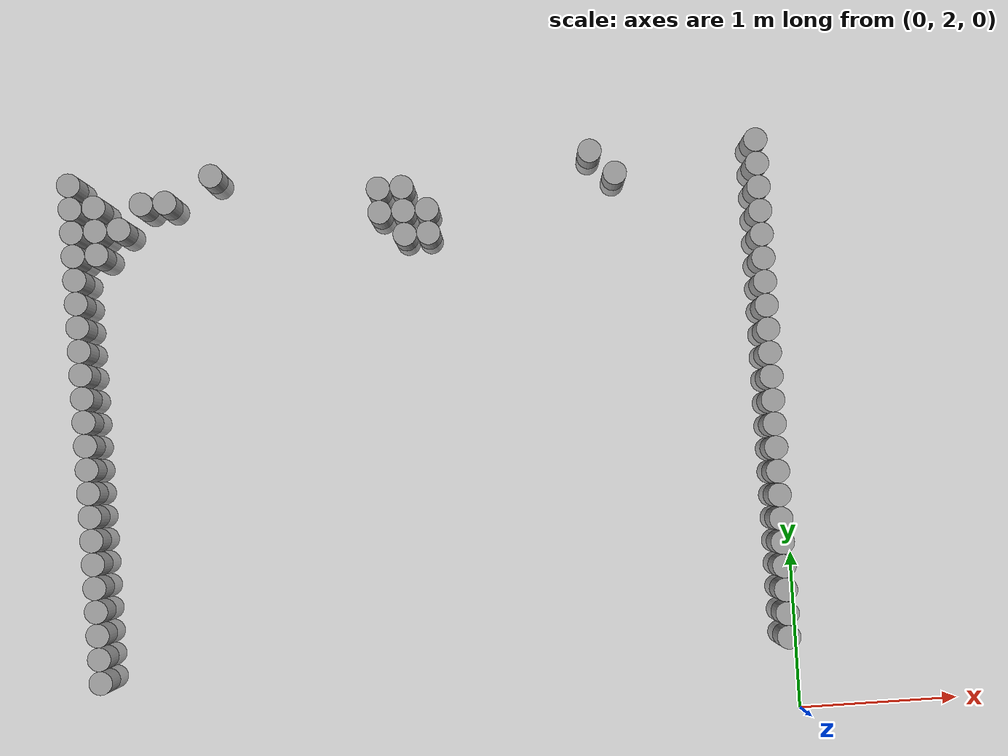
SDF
<sdf version="1.6">
 <world name="default">
  <model name="ground_plane">
   <static>1</static>
   <static>1</static>
   <link name="link">
    <collision name="collision">
     <geometry><plane><normal>0 0 1</normal><size>100 100</size></plane></geometry>
     <surface><friction><ode><mu>100</mu><mu2>50</mu2></ode></friction></surface>
    </collision>
    <visual name="visual">
     <cast_shadows>0</cast_shadows>
     <geometry><plane><normal>0 0 1</normal><size>100 100</size></plane></geometry>
     <material>
      <script><uri>file://media/materials/scripts/gazebo.material</uri><name>Gazebo/Grey</name></script>
     </material>
    </visual>
   </link>
  </model>
  <model name="unit_cylinder_60">
   <static>1</static>
   <pose>-0.075000 2.475000 0.000000 0.000000 0.000000 0.000000</pose>
   <link name="link">
    <inertial>
     <mass>1</mass>
     <inertia><ixx>0.145833</ixx><ixy>0</ixy><ixz>0</ixz><iyy>0.145833</iyy><iyz>0</iyz><izz>0.125</izz></inertia>
    </inertial>
    <collision name="collision">
     <geometry><cylinder><radius>0.075000</radius><length>1</length></cylinder></geometry>
    </collision>
    <visual name="visual">
     <geometry><cylinder><radius>0.075000</radius><length>1</length></cylinder></geometry>
     <material>
      <script><name>Gazebo/Grey</name><uri>file://media/materials/scripts/gazebo.material</uri></script>
     </material>
    </visual>
   </link>
  </model>
  <model name="unit_cylinder_61">
   <static>1</static>
   <pose>-4.425000 2.475000 0.000000 0.000000 0.000000 0.000000</pose>
   <link name="link">
    <inertial>
     <mass>1</mass>
     <inertia><ixx>0.145833</ixx><ixy>0</ixy><ixz>0</ixz><iyy>0.145833</iyy><iyz>0</iyz><izz>0.125</izz></inertia>
    </inertial>
    <collision name="collision">
     <geometry><cylinder><radius>0.075000</radius><length>1</length></cylinder></geometry>
    </collision>
    <visual name="visual">
     <geometry><cylinder><radius>0.075000</radius><length>1</length></cylinder></geometry>
     <material>
      <script><name>Gazebo/Grey</name><uri>file://media/materials/scripts/gazebo.material</uri></script>
     </material>
    </visual>
   </link>
  </model>
  <model name="unit_cylinder_62">
   <static>1</static>
   <pose>-0.075000 2.625000 0.000000 0.000000 0.000000 0.000000</pose>
   <link name="link">
    <inertial>
     <mass>1</mass>
     <inertia><ixx>0.145833</ixx><ixy>0</ixy><ixz>0</ixz><iyy>0.145833</iyy><iyz>0</iyz><izz>0.125</izz></inertia>
    </inertial>
    <collision name="collision">
     <geometry><cylinder><radius>0.075000</radius><length>1</length></cylinder></geometry>
    </collision>
    <visual name="visual">
     <geometry><cylinder><radius>0.075000</radius><length>1</length></cylinder></geometry>
     <material>
      <script><name>Gazebo/Grey</name><uri>file://media/materials/scripts/gazebo.material</uri></script>
     </material>
    </visual>
   </link>
  </model>
  <model name="unit_cylinder_63">
   <static>1</static>
   <pose>-4.425000 2.625000 0.000000 0.000000 0.000000 0.000000</pose>
   <link name="link">
    <inertial>
     <mass>1</mass>
     <inertia><ixx>0.145833</ixx><ixy>0</ixy><ixz>0</ixz><iyy>0.145833</iyy><iyz>0</iyz><izz>0.125</izz></inertia>
    </inertial>
    <collision name="collision">
     <geometry><cylinder><radius>0.075000</radius><length>1</length></cylinder></geometry>
    </collision>
    <visual name="visual">
     <geometry><cylinder><radius>0.075000</radius><length>1</length></cylinder></geometry>
     <material>
      <script><name>Gazebo/Grey</name><uri>file://media/materials/scripts/gazebo.material</uri></script>
     </material>
    </visual>
   </link>
  </model>
  <model name="unit_cylinder_64">
   <static>1</static>
   <pose>-0.075000 2.775000 0.000000 0.000000 0.000000 0.000000</pose>
   <link name="link">
    <inertial>
     <mass>1</mass>
     <inertia><ixx>0.145833</ixx><ixy>0</ixy><ixz>0</ixz><iyy>0.145833</iyy><iyz>0</iyz><izz>0.125</izz></inertia>
    </inertial>
    <collision name="collision">
     <geometry><cylinder><radius>0.075000</radius><length>1</length></cylinder></geometry>
    </collision>
    <visual name="visual">
     <geometry><cylinder><radius>0.075000</radius><length>1</length></cylinder></geometry>
     <material>
      <script><name>Gazebo/Grey</name><uri>file://media/materials/scripts/gazebo.material</uri></script>
     </material>
    </visual>
   </link>
  </model>
  <model name="unit_cylinder_65">
   <static>1</static>
   <pose>-4.425000 2.775000 0.000000 0.000000 0.000000 0.000000</pose>
   <link name="link">
    <inertial>
     <mass>1</mass>
     <inertia><ixx>0.145833</ixx><ixy>0</ixy><ixz>0</ixz><iyy>0.145833</iyy><iyz>0</iyz><izz>0.125</izz></inertia>
    </inertial>
    <collision name="collision">
     <geometry><cylinder><radius>0.075000</radius><length>1</length></cylinder></geometry>
    </collision>
    <visual name="visual">
     <geometry><cylinder><radius>0.075000</radius><length>1</length></cylinder></geometry>
     <material>
      <script><name>Gazebo/Grey</name><uri>file://media/materials/scripts/gazebo.material</uri></script>
     </material>
    </visual>
   </link>
  </model>
  <model name="unit_cylinder_66">
   <static>1</static>
   <pose>-0.075000 2.925000 0.000000 0.000000 0.000000 0.000000</pose>
   <link name="link">
    <inertial>
     <mass>1</mass>
     <inertia><ixx>0.145833</ixx><ixy>0</ixy><ixz>0</ixz><iyy>0.145833</iyy><iyz>0</iyz><izz>0.125</izz></inertia>
    </inertial>
    <collision name="collision">
     <geometry><cylinder><radius>0.075000</radius><length>1</length></cylinder></geometry>
    </collision>
    <visual name="visual">
     <geometry><cylinder><radius>0.075000</radius><length>1</length></cylinder></geometry>
     <material>
      <script><name>Gazebo/Grey</name><uri>file://media/materials/scripts/gazebo.material</uri></script>
     </material>
    </visual>
   </link>
  </model>
  <model name="unit_cylinder_67">
   <static>1</static>
   <pose>-4.425000 2.925000 0.000000 0.000000 0.000000 0.000000</pose>
   <link name="link">
    <inertial>
     <mass>1</mass>
     <inertia><ixx>0.145833</ixx><ixy>0</ixy><ixz>0</ixz><iyy>0.145833</iyy><iyz>0</iyz><izz>0.125</izz></inertia>
    </inertial>
    <collision name="collision">
     <geometry><cylinder><radius>0.075000</radius><length>1</length></cylinder></geometry>
    </collision>
    <visual name="visual">
     <geometry><cylinder><radius>0.075000</radius><length>1</length></cylinder></geometry>
     <material>
      <script><name>Gazebo/Grey</name><uri>file://media/materials/scripts/gazebo.material</uri></script>
     </material>
    </visual>
   </link>
  </model>
  <model name="unit_cylinder_68">
   <static>1</static>
   <pose>-0.075000 3.075000 0.000000 0.000000 0.000000 0.000000</pose>
   <link name="link">
    <inertial>
     <mass>1</mass>
     <inertia><ixx>0.145833</ixx><ixy>0</ixy><ixz>0</ixz><iyy>0.145833</iyy><iyz>0</iyz><izz>0.125</izz></inertia>
    </inertial>
    <collision name="collision">
     <geometry><cylinder><radius>0.075000</radius><length>1</length></cylinder></geometry>
    </collision>
    <visual name="visual">
     <geometry><cylinder><radius>0.075000</radius><length>1</length></cylinder></geometry>
     <material>
      <script><name>Gazebo/Grey</name><uri>file://media/materials/scripts/gazebo.material</uri></script>
     </material>
    </visual>
   </link>
  </model>
  <model name="unit_cylinder_69">
   <static>1</static>
   <pose>-4.425000 3.075000 0.000000 0.000000 0.000000 0.000000</pose>
   <link name="link">
    <inertial>
     <mass>1</mass>
     <inertia><ixx>0.145833</ixx><ixy>0</ixy><ixz>0</ixz><iyy>0.145833</iyy><iyz>0</iyz><izz>0.125</izz></inertia>
    </inertial>
    <collision name="collision">
     <geometry><cylinder><radius>0.075000</radius><length>1</length></cylinder></geometry>
    </collision>
    <visual name="visual">
     <geometry><cylinder><radius>0.075000</radius><length>1</length></cylinder></geometry>
     <material>
      <script><name>Gazebo/Grey</name><uri>file://media/materials/scripts/gazebo.material</uri></script>
     </material>
    </visual>
   </link>
  </model>
  <model name="unit_cylinder_70">
   <static>1</static>
   <pose>-0.075000 3.225000 0.000000 0.000000 0.000000 0.000000</pose>
   <link name="link">
    <inertial>
     <mass>1</mass>
     <inertia><ixx>0.145833</ixx><ixy>0</ixy><ixz>0</ixz><iyy>0.145833</iyy><iyz>0</iyz><izz>0.125</izz></inertia>
    </inertial>
    <collision name="collision">
     <geometry><cylinder><radius>0.075000</radius><length>1</length></cylinder></geometry>
    </collision>
    <visual name="visual">
     <geometry><cylinder><radius>0.075000</radius><length>1</length></cylinder></geometry>
     <material>
      <script><name>Gazebo/Grey</name><uri>file://media/materials/scripts/gazebo.material</uri></script>
     </material>
    </visual>
   </link>
  </model>
  <model name="unit_cylinder_71">
   <static>1</static>
   <pose>-4.425000 3.225000 0.000000 0.000000 0.000000 0.000000</pose>
   <link name="link">
    <inertial>
     <mass>1</mass>
     <inertia><ixx>0.145833</ixx><ixy>0</ixy><ixz>0</ixz><iyy>0.145833</iyy><iyz>0</iyz><izz>0.125</izz></inertia>
    </inertial>
    <collision name="collision">
     <geometry><cylinder><radius>0.075000</radius><length>1</length></cylinder></geometry>
    </collision>
    <visual name="visual">
     <geometry><cylinder><radius>0.075000</radius><length>1</length></cylinder></geometry>
     <material>
      <script><name>Gazebo/Grey</name><uri>file://media/materials/scripts/gazebo.material</uri></script>
     </material>
    </visual>
   </link>
  </model>
  <model name="unit_cylinder_72">
   <static>1</static>
   <pose>-0.075000 3.375000 0.000000 0.000000 0.000000 0.000000</pose>
   <link name="link">
    <inertial>
     <mass>1</mass>
     <inertia><ixx>0.145833</ixx><ixy>0</ixy><ixz>0</ixz><iyy>0.145833</iyy><iyz>0</iyz><izz>0.125</izz></inertia>
    </inertial>
    <collision name="collision">
     <geometry><cylinder><radius>0.075000</radius><length>1</length></cylinder></geometry>
    </collision>
    <visual name="visual">
     <geometry><cylinder><radius>0.075000</radius><length>1</length></cylinder></geometry>
     <material>
      <script><name>Gazebo/Grey</name><uri>file://media/materials/scripts/gazebo.material</uri></script>
     </material>
    </visual>
   </link>
  </model>
  <model name="unit_cylinder_73">
   <static>1</static>
   <pose>-4.425000 3.375000 0.000000 0.000000 0.000000 0.000000</pose>
   <link name="link">
    <inertial>
     <mass>1</mass>
     <inertia><ixx>0.145833</ixx><ixy>0</ixy><ixz>0</ixz><iyy>0.145833</iyy><iyz>0</iyz><izz>0.125</izz></inertia>
    </inertial>
    <collision name="collision">
     <geometry><cylinder><radius>0.075000</radius><length>1</length></cylinder></geometry>
    </collision>
    <visual name="visual">
     <geometry><cylinder><radius>0.075000</radius><length>1</length></cylinder></geometry>
     <material>
      <script><name>Gazebo/Grey</name><uri>file://media/materials/scripts/gazebo.material</uri></script>
     </material>
    </visual>
   </link>
  </model>
  <model name="unit_cylinder_74">
   <static>1</static>
   <pose>-0.075000 3.525000 0.000000 0.000000 0.000000 0.000000</pose>
   <link name="link">
    <inertial>
     <mass>1</mass>
     <inertia><ixx>0.145833</ixx><ixy>0</ixy><ixz>0</ixz><iyy>0.145833</iyy><iyz>0</iyz><izz>0.125</izz></inertia>
    </inertial>
    <collision name="collision">
     <geometry><cylinder><radius>0.075000</radius><length>1</length></cylinder></geometry>
    </collision>
    <visual name="visual">
     <geometry><cylinder><radius>0.075000</radius><length>1</length></cylinder></geometry>
     <material>
      <script><name>Gazebo/Grey</name><uri>file://media/materials/scripts/gazebo.material</uri></script>
     </material>
    </visual>
   </link>
  </model>
  <model name="unit_cylinder_75">
   <static>1</static>
   <pose>-4.425000 3.525000 0.000000 0.000000 0.000000 0.000000</pose>
   <link name="link">
    <inertial>
     <mass>1</mass>
     <inertia><ixx>0.145833</ixx><ixy>0</ixy><ixz>0</ixz><iyy>0.145833</iyy><iyz>0</iyz><izz>0.125</izz></inertia>
    </inertial>
    <collision name="collision">
     <geometry><cylinder><radius>0.075000</radius><length>1</length></cylinder></geometry>
    </collision>
    <visual name="visual">
     <geometry><cylinder><radius>0.075000</radius><length>1</length></cylinder></geometry>
     <material>
      <script><name>Gazebo/Grey</name><uri>file://media/materials/scripts/gazebo.material</uri></script>
     </material>
    </visual>
   </link>
  </model>
  <model name="unit_cylinder_76">
   <static>1</static>
   <pose>-0.075000 3.675000 0.000000 0.000000 0.000000 0.000000</pose>
   <link name="link">
    <inertial>
     <mass>1</mass>
     <inertia><ixx>0.145833</ixx><ixy>0</ixy><ixz>0</ixz><iyy>0.145833</iyy><iyz>0</iyz><izz>0.125</izz></inertia>
    </inertial>
    <collision name="collision">
     <geometry><cylinder><radius>0.075000</radius><length>1</length></cylinder></geometry>
    </collision>
    <visual name="visual">
     <geometry><cylinder><radius>0.075000</radius><length>1</length></cylinder></geometry>
     <material>
      <script><name>Gazebo/Grey</name><uri>file://media/materials/scripts/gazebo.material</uri></script>
     </material>
    </visual>
   </link>
  </model>
  <model name="unit_cylinder_77">
   <static>1</static>
   <pose>-4.425000 3.675000 0.000000 0.000000 0.000000 0.000000</pose>
   <link name="link">
    <inertial>
     <mass>1</mass>
     <inertia><ixx>0.145833</ixx><ixy>0</ixy><ixz>0</ixz><iyy>0.145833</iyy><iyz>0</iyz><izz>0.125</izz></inertia>
    </inertial>
    <collision name="collision">
     <geometry><cylinder><radius>0.075000</radius><length>1</length></cylinder></geometry>
    </collision>
    <visual name="visual">
     <geometry><cylinder><radius>0.075000</radius><length>1</length></cylinder></geometry>
     <material>
      <script><name>Gazebo/Grey</name><uri>file://media/materials/scripts/gazebo.material</uri></script>
     </material>
    </visual>
   </link>
  </model>
  <model name="unit_cylinder_78">
   <static>1</static>
   <pose>-0.075000 3.825000 0.000000 0.000000 0.000000 0.000000</pose>
   <link name="link">
    <inertial>
     <mass>1</mass>
     <inertia><ixx>0.145833</ixx><ixy>0</ixy><ixz>0</ixz><iyy>0.145833</iyy><iyz>0</iyz><izz>0.125</izz></inertia>
    </inertial>
    <collision name="collision">
     <geometry><cylinder><radius>0.075000</radius><length>1</length></cylinder></geometry>
    </collision>
    <visual name="visual">
     <geometry><cylinder><radius>0.075000</radius><length>1</length></cylinder></geometry>
     <material>
      <script><name>Gazebo/Grey</name><uri>file://media/materials/scripts/gazebo.material</uri></script>
     </material>
    </visual>
   </link>
  </model>
  <model name="unit_cylinder_79">
   <static>1</static>
   <pose>-4.425000 3.825000 0.000000 0.000000 0.000000 0.000000</pose>
   <link name="link">
    <inertial>
     <mass>1</mass>
     <inertia><ixx>0.145833</ixx><ixy>0</ixy><ixz>0</ixz><iyy>0.145833</iyy><iyz>0</iyz><izz>0.125</izz></inertia>
    </inertial>
    <collision name="collision">
     <geometry><cylinder><radius>0.075000</radius><length>1</length></cylinder></geometry>
    </collision>
    <visual name="visual">
     <geometry><cylinder><radius>0.075000</radius><length>1</length></cylinder></geometry>
     <material>
      <script><name>Gazebo/Grey</name><uri>file://media/materials/scripts/gazebo.material</uri></script>
     </material>
    </visual>
   </link>
  </model>
  <model name="unit_cylinder_80">
   <static>1</static>
   <pose>-0.075000 3.975000 0.000000 0.000000 0.000000 0.000000</pose>
   <link name="link">
    <inertial>
     <mass>1</mass>
     <inertia><ixx>0.145833</ixx><ixy>0</ixy><ixz>0</ixz><iyy>0.145833</iyy><iyz>0</iyz><izz>0.125</izz></inertia>
    </inertial>
    <collision name="collision">
     <geometry><cylinder><radius>0.075000</radius><length>1</length></cylinder></geometry>
    </collision>
    <visual name="visual">
     <geometry><cylinder><radius>0.075000</radius><length>1</length></cylinder></geometry>
     <material>
      <script><name>Gazebo/Grey</name><uri>file://media/materials/scripts/gazebo.material</uri></script>
     </material>
    </visual>
   </link>
  </model>
  <model name="unit_cylinder_81">
   <static>1</static>
   <pose>-4.425000 3.975000 0.000000 0.000000 0.000000 0.000000</pose>
   <link name="link">
    <inertial>
     <mass>1</mass>
     <inertia><ixx>0.145833</ixx><ixy>0</ixy><ixz>0</ixz><iyy>0.145833</iyy><iyz>0</iyz><izz>0.125</izz></inertia>
    </inertial>
    <collision name="collision">
     <geometry><cylinder><radius>0.075000</radius><length>1</length></cylinder></geometry>
    </collision>
    <visual name="visual">
     <geometry><cylinder><radius>0.075000</radius><length>1</length></cylinder></geometry>
     <material>
      <script><name>Gazebo/Grey</name><uri>file://media/materials/scripts/gazebo.material</uri></script>
     </material>
    </visual>
   </link>
  </model>
  <model name="unit_cylinder_82">
   <static>1</static>
   <pose>-0.075000 4.125000 0.000000 0.000000 0.000000 0.000000</pose>
   <link name="link">
    <inertial>
     <mass>1</mass>
     <inertia><ixx>0.145833</ixx><ixy>0</ixy><ixz>0</ixz><iyy>0.145833</iyy><iyz>0</iyz><izz>0.125</izz></inertia>
    </inertial>
    <collision name="collision">
     <geometry><cylinder><radius>0.075000</radius><length>1</length></cylinder></geometry>
    </collision>
    <visual name="visual">
     <geometry><cylinder><radius>0.075000</radius><length>1</length></cylinder></geometry>
     <material>
      <script><name>Gazebo/Grey</name><uri>file://media/materials/scripts/gazebo.material</uri></script>
     </material>
    </visual>
   </link>
  </model>
  <model name="unit_cylinder_83">
   <static>1</static>
   <pose>-4.425000 4.125000 0.000000 0.000000 0.000000 0.000000</pose>
   <link name="link">
    <inertial>
     <mass>1</mass>
     <inertia><ixx>0.145833</ixx><ixy>0</ixy><ixz>0</ixz><iyy>0.145833</iyy><iyz>0</iyz><izz>0.125</izz></inertia>
    </inertial>
    <collision name="collision">
     <geometry><cylinder><radius>0.075000</radius><length>1</length></cylinder></geometry>
    </collision>
    <visual name="visual">
     <geometry><cylinder><radius>0.075000</radius><length>1</length></cylinder></geometry>
     <material>
      <script><name>Gazebo/Grey</name><uri>file://media/materials/scripts/gazebo.material</uri></script>
     </material>
    </visual>
   </link>
  </model>
  <model name="unit_cylinder_84">
   <static>1</static>
   <pose>-0.075000 4.275000 0.000000 0.000000 0.000000 0.000000</pose>
   <link name="link">
    <inertial>
     <mass>1</mass>
     <inertia><ixx>0.145833</ixx><ixy>0</ixy><ixz>0</ixz><iyy>0.145833</iyy><iyz>0</iyz><izz>0.125</izz></inertia>
    </inertial>
    <collision name="collision">
     <geometry><cylinder><radius>0.075000</radius><length>1</length></cylinder></geometry>
    </collision>
    <visual name="visual">
     <geometry><cylinder><radius>0.075000</radius><length>1</length></cylinder></geometry>
     <material>
      <script><name>Gazebo/Grey</name><uri>file://media/materials/scripts/gazebo.material</uri></script>
     </material>
    </visual>
   </link>
  </model>
  <model name="unit_cylinder_85">
   <static>1</static>
   <pose>-4.425000 4.275000 0.000000 0.000000 0.000000 0.000000</pose>
   <link name="link">
    <inertial>
     <mass>1</mass>
     <inertia><ixx>0.145833</ixx><ixy>0</ixy><ixz>0</ixz><iyy>0.145833</iyy><iyz>0</iyz><izz>0.125</izz></inertia>
    </inertial>
    <collision name="collision">
     <geometry><cylinder><radius>0.075000</radius><length>1</length></cylinder></geometry>
    </collision>
    <visual name="visual">
     <geometry><cylinder><radius>0.075000</radius><length>1</length></cylinder></geometry>
     <material>
      <script><name>Gazebo/Grey</name><uri>file://media/materials/scripts/gazebo.material</uri></script>
     </material>
    </visual>
   </link>
  </model>
  <model name="unit_cylinder_86">
   <static>1</static>
   <pose>-0.075000 4.425000 0.000000 0.000000 0.000000 0.000000</pose>
   <link name="link">
    <inertial>
     <mass>1</mass>
     <inertia><ixx>0.145833</ixx><ixy>0</ixy><ixz>0</ixz><iyy>0.145833</iyy><iyz>0</iyz><izz>0.125</izz></inertia>
    </inertial>
    <collision name="collision">
     <geometry><cylinder><radius>0.075000</radius><length>1</length></cylinder></geometry>
    </collision>
    <visual name="visual">
     <geometry><cylinder><radius>0.075000</radius><length>1</length></cylinder></geometry>
     <material>
      <script><name>Gazebo/Grey</name><uri>file://media/materials/scripts/gazebo.material</uri></script>
     </material>
    </visual>
   </link>
  </model>
  <model name="unit_cylinder_87">
   <static>1</static>
   <pose>-4.425000 4.425000 0.000000 0.000000 0.000000 0.000000</pose>
   <link name="link">
    <inertial>
     <mass>1</mass>
     <inertia><ixx>0.145833</ixx><ixy>0</ixy><ixz>0</ixz><iyy>0.145833</iyy><iyz>0</iyz><izz>0.125</izz></inertia>
    </inertial>
    <collision name="collision">
     <geometry><cylinder><radius>0.075000</radius><length>1</length></cylinder></geometry>
    </collision>
    <visual name="visual">
     <geometry><cylinder><radius>0.075000</radius><length>1</length></cylinder></geometry>
     <material>
      <script><name>Gazebo/Grey</name><uri>file://media/materials/scripts/gazebo.material</uri></script>
     </material>
    </visual>
   </link>
  </model>
  <model name="unit_cylinder_88">
   <static>1</static>
   <pose>-0.075000 4.575000 0.000000 0.000000 0.000000 0.000000</pose>
   <link name="link">
    <inertial>
     <mass>1</mass>
     <inertia><ixx>0.145833</ixx><ixy>0</ixy><ixz>0</ixz><iyy>0.145833</iyy><iyz>0</iyz><izz>0.125</izz></inertia>
    </inertial>
    <collision name="collision">
     <geometry><cylinder><radius>0.075000</radius><length>1</length></cylinder></geometry>
    </collision>
    <visual name="visual">
     <geometry><cylinder><radius>0.075000</radius><length>1</length></cylinder></geometry>
     <material>
      <script><name>Gazebo/Grey</name><uri>file://media/materials/scripts/gazebo.material</uri></script>
     </material>
    </visual>
   </link>
  </model>
  <model name="unit_cylinder_89">
   <static>1</static>
   <pose>-4.425000 4.575000 0.000000 0.000000 0.000000 0.000000</pose>
   <link name="link">
    <inertial>
     <mass>1</mass>
     <inertia><ixx>0.145833</ixx><ixy>0</ixy><ixz>0</ixz><iyy>0.145833</iyy><iyz>0</iyz><izz>0.125</izz></inertia>
    </inertial>
    <collision name="collision">
     <geometry><cylinder><radius>0.075000</radius><length>1</length></cylinder></geometry>
    </collision>
    <visual name="visual">
     <geometry><cylinder><radius>0.075000</radius><length>1</length></cylinder></geometry>
     <material>
      <script><name>Gazebo/Grey</name><uri>file://media/materials/scripts/gazebo.material</uri></script>
     </material>
    </visual>
   </link>
  </model>
  <model name="unit_cylinder_90">
   <static>1</static>
   <pose>-0.075000 4.725000 0.000000 0.000000 0.000000 0.000000</pose>
   <link name="link">
    <inertial>
     <mass>1</mass>
     <inertia><ixx>0.145833</ixx><ixy>0</ixy><ixz>0</ixz><iyy>0.145833</iyy><iyz>0</iyz><izz>0.125</izz></inertia>
    </inertial>
    <collision name="collision">
     <geometry><cylinder><radius>0.075000</radius><length>1</length></cylinder></geometry>
    </collision>
    <visual name="visual">
     <geometry><cylinder><radius>0.075000</radius><length>1</length></cylinder></geometry>
     <material>
      <script><name>Gazebo/Grey</name><uri>file://media/materials/scripts/gazebo.material</uri></script>
     </material>
    </visual>
   </link>
  </model>
  <model name="unit_cylinder_91">
   <static>1</static>
   <pose>-4.425000 4.725000 0.000000 0.000000 0.000000 0.000000</pose>
   <link name="link">
    <inertial>
     <mass>1</mass>
     <inertia><ixx>0.145833</ixx><ixy>0</ixy><ixz>0</ixz><iyy>0.145833</iyy><iyz>0</iyz><izz>0.125</izz></inertia>
    </inertial>
    <collision name="collision">
     <geometry><cylinder><radius>0.075000</radius><length>1</length></cylinder></geometry>
    </collision>
    <visual name="visual">
     <geometry><cylinder><radius>0.075000</radius><length>1</length></cylinder></geometry>
     <material>
      <script><name>Gazebo/Grey</name><uri>file://media/materials/scripts/gazebo.material</uri></script>
     </material>
    </visual>
   </link>
  </model>
  <model name="unit_cylinder_92">
   <static>1</static>
   <pose>-0.075000 4.875000 0.000000 0.000000 0.000000 0.000000</pose>
   <link name="link">
    <inertial>
     <mass>1</mass>
     <inertia><ixx>0.145833</ixx><ixy>0</ixy><ixz>0</ixz><iyy>0.145833</iyy><iyz>0</iyz><izz>0.125</izz></inertia>
    </inertial>
    <collision name="collision">
     <geometry><cylinder><radius>0.075000</radius><length>1</length></cylinder></geometry>
    </collision>
    <visual name="visual">
     <geometry><cylinder><radius>0.075000</radius><length>1</length></cylinder></geometry>
     <material>
      <script><name>Gazebo/Grey</name><uri>file://media/materials/scripts/gazebo.material</uri></script>
     </material>
    </visual>
   </link>
  </model>
  <model name="unit_cylinder_93">
   <static>1</static>
   <pose>-4.425000 4.875000 0.000000 0.000000 0.000000 0.000000</pose>
   <link name="link">
    <inertial>
     <mass>1</mass>
     <inertia><ixx>0.145833</ixx><ixy>0</ixy><ixz>0</ixz><iyy>0.145833</iyy><iyz>0</iyz><izz>0.125</izz></inertia>
    </inertial>
    <collision name="collision">
     <geometry><cylinder><radius>0.075000</radius><length>1</length></cylinder></geometry>
    </collision>
    <visual name="visual">
     <geometry><cylinder><radius>0.075000</radius><length>1</length></cylinder></geometry>
     <material>
      <script><name>Gazebo/Grey</name><uri>file://media/materials/scripts/gazebo.material</uri></script>
     </material>
    </visual>
   </link>
  </model>
  <model name="unit_cylinder_94">
   <static>1</static>
   <pose>-0.075000 5.025000 0.000000 0.000000 0.000000 0.000000</pose>
   <link name="link">
    <inertial>
     <mass>1</mass>
     <inertia><ixx>0.145833</ixx><ixy>0</ixy><ixz>0</ixz><iyy>0.145833</iyy><iyz>0</iyz><izz>0.125</izz></inertia>
    </inertial>
    <collision name="collision">
     <geometry><cylinder><radius>0.075000</radius><length>1</length></cylinder></geometry>
    </collision>
    <visual name="visual">
     <geometry><cylinder><radius>0.075000</radius><length>1</length></cylinder></geometry>
     <material>
      <script><name>Gazebo/Grey</name><uri>file://media/materials/scripts/gazebo.material</uri></script>
     </material>
    </visual>
   </link>
  </model>
  <model name="unit_cylinder_95">
   <static>1</static>
   <pose>-4.425000 5.025000 0.000000 0.000000 0.000000 0.000000</pose>
   <link name="link">
    <inertial>
     <mass>1</mass>
     <inertia><ixx>0.145833</ixx><ixy>0</ixy><ixz>0</ixz><iyy>0.145833</iyy><iyz>0</iyz><izz>0.125</izz></inertia>
    </inertial>
    <collision name="collision">
     <geometry><cylinder><radius>0.075000</radius><length>1</length></cylinder></geometry>
    </collision>
    <visual name="visual">
     <geometry><cylinder><radius>0.075000</radius><length>1</length></cylinder></geometry>
     <material>
      <script><name>Gazebo/Grey</name><uri>file://media/materials/scripts/gazebo.material</uri></script>
     </material>
    </visual>
   </link>
  </model>
  <model name="unit_cylinder_96">
   <static>1</static>
   <pose>-4.425000 5.175000 0.000000 0.000000 0.000000 0.000000</pose>
   <link name="link">
    <inertial>
     <mass>1</mass>
     <inertia><ixx>0.145833</ixx><ixy>0</ixy><ixz>0</ixz><iyy>0.145833</iyy><iyz>0</iyz><izz>0.125</izz></inertia>
    </inertial>
    <collision name="collision">
     <geometry><cylinder><radius>0.075000</radius><length>1</length></cylinder></geometry>
    </collision>
    <visual name="visual">
     <geometry><cylinder><radius>0.075000</radius><length>1</length></cylinder></geometry>
     <material>
      <script><name>Gazebo/Grey</name><uri>file://media/materials/scripts/gazebo.material</uri></script>
     </material>
    </visual>
   </link>
  </model>
  <model name="unit_cylinder_97">
   <static>1</static>
   <pose>-4.425000 5.325000 0.000000 0.000000 0.000000 0.000000</pose>
   <link name="link">
    <inertial>
     <mass>1</mass>
     <inertia><ixx>0.145833</ixx><ixy>0</ixy><ixz>0</ixz><iyy>0.145833</iyy><iyz>0</iyz><izz>0.125</izz></inertia>
    </inertial>
    <collision name="collision">
     <geometry><cylinder><radius>0.075000</radius><length>1</length></cylinder></geometry>
    </collision>
    <visual name="visual">
     <geometry><cylinder><radius>0.075000</radius><length>1</length></cylinder></geometry>
     <material>
      <script><name>Gazebo/Grey</name><uri>file://media/materials/scripts/gazebo.material</uri></script>
     </material>
    </visual>
   </link>
  </model>
  <model name="unit_cylinder_98">
   <static>1</static>
   <pose>-4.425000 5.475000 0.000000 0.000000 0.000000 0.000000</pose>
   <link name="link">
    <inertial>
     <mass>1</mass>
     <inertia><ixx>0.145833</ixx><ixy>0</ixy><ixz>0</ixz><iyy>0.145833</iyy><iyz>0</iyz><izz>0.125</izz></inertia>
    </inertial>
    <collision name="collision">
     <geometry><cylinder><radius>0.075000</radius><length>1</length></cylinder></geometry>
    </collision>
    <visual name="visual">
     <geometry><cylinder><radius>0.075000</radius><length>1</length></cylinder></geometry>
     <material>
      <script><name>Gazebo/Grey</name><uri>file://media/materials/scripts/gazebo.material</uri></script>
     </material>
    </visual>
   </link>
  </model>
  <model name="unit_cylinder_99">
   <static>1</static>
   <pose>-4.425000 5.625000 0.000000 0.000000 0.000000 0.000000</pose>
   <link name="link">
    <inertial>
     <mass>1</mass>
     <inertia><ixx>0.145833</ixx><ixy>0</ixy><ixz>0</ixz><iyy>0.145833</iyy><iyz>0</iyz><izz>0.125</izz></inertia>
    </inertial>
    <collision name="collision">
     <geometry><cylinder><radius>0.075000</radius><length>1</length></cylinder></geometry>
    </collision>
    <visual name="visual">
     <geometry><cylinder><radius>0.075000</radius><length>1</length></cylinder></geometry>
     <material>
      <script><name>Gazebo/Grey</name><uri>file://media/materials/scripts/gazebo.material</uri></script>
     </material>
    </visual>
   </link>
  </model>
  <model name="unit_cylinder_126">
   <static>1</static>
   <pose>-4.275000 5.175000 0.000000 0.000000 0.000000 0.000000</pose>
   <link name="link">
    <inertial>
     <mass>1</mass>
     <inertia><ixx>0.145833</ixx><ixy>0</ixy><ixz>0</ixz><iyy>0.145833</iyy><iyz>0</iyz><izz>0.125</izz></inertia>
    </inertial>
    <collision name="collision">
     <geometry><cylinder><radius>0.075000</radius><length>1</length></cylinder></geometry>
    </collision>
    <visual name="visual">
     <geometry><cylinder><radius>0.075000</radius><length>1</length></cylinder></geometry>
     <material>
      <script><name>Gazebo/Grey</name><uri>file://media/materials/scripts/gazebo.material</uri></script>
     </material>
    </visual>
   </link>
  </model>
  <model name="unit_cylinder_127">
   <static>1</static>
   <pose>-4.275000 5.325000 0.000000 0.000000 0.000000 0.000000</pose>
   <link name="link">
    <inertial>
     <mass>1</mass>
     <inertia><ixx>0.145833</ixx><ixy>0</ixy><ixz>0</ixz><iyy>0.145833</iyy><iyz>0</iyz><izz>0.125</izz></inertia>
    </inertial>
    <collision name="collision">
     <geometry><cylinder><radius>0.075000</radius><length>1</length></cylinder></geometry>
    </collision>
    <visual name="visual">
     <geometry><cylinder><radius>0.075000</radius><length>1</length></cylinder></geometry>
     <material>
      <script><name>Gazebo/Grey</name><uri>file://media/materials/scripts/gazebo.material</uri></script>
     </material>
    </visual>
   </link>
  </model>
  <model name="unit_cylinder_128">
   <static>1</static>
   <pose>-4.275000 5.475000 0.000000 0.000000 0.000000 0.000000</pose>
   <link name="link">
    <inertial>
     <mass>1</mass>
     <inertia><ixx>0.145833</ixx><ixy>0</ixy><ixz>0</ixz><iyy>0.145833</iyy><iyz>0</iyz><izz>0.125</izz></inertia>
    </inertial>
    <collision name="collision">
     <geometry><cylinder><radius>0.075000</radius><length>1</length></cylinder></geometry>
    </collision>
    <visual name="visual">
     <geometry><cylinder><radius>0.075000</radius><length>1</length></cylinder></geometry>
     <material>
      <script><name>Gazebo/Grey</name><uri>file://media/materials/scripts/gazebo.material</uri></script>
     </material>
    </visual>
   </link>
  </model>
  <model name="unit_cylinder_141">
   <static>1</static>
   <pose>-4.125000 5.325000 0.000000 0.000000 0.000000 0.000000</pose>
   <link name="link">
    <inertial>
     <mass>1</mass>
     <inertia><ixx>0.145833</ixx><ixy>0</ixy><ixz>0</ixz><iyy>0.145833</iyy><iyz>0</iyz><izz>0.125</izz></inertia>
    </inertial>
    <collision name="collision">
     <geometry><cylinder><radius>0.075000</radius><length>1</length></cylinder></geometry>
    </collision>
    <visual name="visual">
     <geometry><cylinder><radius>0.075000</radius><length>1</length></cylinder></geometry>
     <material>
      <script><name>Gazebo/Grey</name><uri>file://media/materials/scripts/gazebo.material</uri></script>
     </material>
    </visual>
   </link>
  </model>
  <model name="unit_cylinder_143">
   <static>1</static>
   <pose>-3.975000 5.475000 0.000000 0.000000 0.000000 0.000000</pose>
   <link name="link">
    <inertial>
     <mass>1</mass>
     <inertia><ixx>0.145833</ixx><ixy>0</ixy><ixz>0</ixz><iyy>0.145833</iyy><iyz>0</iyz><izz>0.125</izz></inertia>
    </inertial>
    <collision name="collision">
     <geometry><cylinder><radius>0.075000</radius><length>1</length></cylinder></geometry>
    </collision>
    <visual name="visual">
     <geometry><cylinder><radius>0.075000</radius><length>1</length></cylinder></geometry>
     <material>
      <script><name>Gazebo/Grey</name><uri>file://media/materials/scripts/gazebo.material</uri></script>
     </material>
    </visual>
   </link>
  </model>
  <model name="unit_cylinder_144">
   <static>1</static>
   <pose>-3.825000 5.475000 0.000000 0.000000 0.000000 0.000000</pose>
   <link name="link">
    <inertial>
     <mass>1</mass>
     <inertia><ixx>0.145833</ixx><ixy>0</ixy><ixz>0</ixz><iyy>0.145833</iyy><iyz>0</iyz><izz>0.125</izz></inertia>
    </inertial>
    <collision name="collision">
     <geometry><cylinder><radius>0.075000</radius><length>1</length></cylinder></geometry>
    </collision>
    <visual name="visual">
     <geometry><cylinder><radius>0.075000</radius><length>1</length></cylinder></geometry>
     <material>
      <script><name>Gazebo/Grey</name><uri>file://media/materials/scripts/gazebo.material</uri></script>
     </material>
    </visual>
   </link>
  </model>
  <model name="unit_cylinder_150">
   <static>1</static>
   <pose>-3.525000 5.625000 0.000000 0.000000 0.000000 0.000000</pose>
   <link name="link">
    <inertial>
     <mass>1</mass>
     <inertia><ixx>0.145833</ixx><ixy>0</ixy><ixz>0</ixz><iyy>0.145833</iyy><iyz>0</iyz><izz>0.125</izz></inertia>
    </inertial>
    <collision name="collision">
     <geometry><cylinder><radius>0.075000</radius><length>1</length></cylinder></geometry>
    </collision>
    <visual name="visual">
     <geometry><cylinder><radius>0.075000</radius><length>1</length></cylinder></geometry>
     <material>
      <script><name>Gazebo/Grey</name><uri>file://media/materials/scripts/gazebo.material</uri></script>
     </material>
    </visual>
   </link>
  </model>
  <model name="unit_cylinder_185">
   <static>1</static>
   <pose>-2.475000 5.325000 0.000000 0.000000 0.000000 0.000000</pose>
   <link name="link">
    <inertial>
     <mass>1</mass>
     <inertia><ixx>0.145833</ixx><ixy>0</ixy><ixz>0</ixz><iyy>0.145833</iyy><iyz>0</iyz><izz>0.125</izz></inertia>
    </inertial>
    <collision name="collision">
     <geometry><cylinder><radius>0.075000</radius><length>1</length></cylinder></geometry>
    </collision>
    <visual name="visual">
     <geometry><cylinder><radius>0.075000</radius><length>1</length></cylinder></geometry>
     <material>
      <script><name>Gazebo/Grey</name><uri>file://media/materials/scripts/gazebo.material</uri></script>
     </material>
    </visual>
   </link>
  </model>
  <model name="unit_cylinder_186">
   <static>1</static>
   <pose>-2.475000 5.475000 0.000000 0.000000 0.000000 0.000000</pose>
   <link name="link">
    <inertial>
     <mass>1</mass>
     <inertia><ixx>0.145833</ixx><ixy>0</ixy><ixz>0</ixz><iyy>0.145833</iyy><iyz>0</iyz><izz>0.125</izz></inertia>
    </inertial>
    <collision name="collision">
     <geometry><cylinder><radius>0.075000</radius><length>1</length></cylinder></geometry>
    </collision>
    <visual name="visual">
     <geometry><cylinder><radius>0.075000</radius><length>1</length></cylinder></geometry>
     <material>
      <script><name>Gazebo/Grey</name><uri>file://media/materials/scripts/gazebo.material</uri></script>
     </material>
    </visual>
   </link>
  </model>
  <model name="unit_cylinder_188">
   <static>1</static>
   <pose>-2.325000 5.175000 0.000000 0.000000 0.000000 0.000000</pose>
   <link name="link">
    <inertial>
     <mass>1</mass>
     <inertia><ixx>0.145833</ixx><ixy>0</ixy><ixz>0</ixz><iyy>0.145833</iyy><iyz>0</iyz><izz>0.125</izz></inertia>
    </inertial>
    <collision name="collision">
     <geometry><cylinder><radius>0.075000</radius><length>1</length></cylinder></geometry>
    </collision>
    <visual name="visual">
     <geometry><cylinder><radius>0.075000</radius><length>1</length></cylinder></geometry>
     <material>
      <script><name>Gazebo/Grey</name><uri>file://media/materials/scripts/gazebo.material</uri></script>
     </material>
    </visual>
   </link>
  </model>
  <model name="unit_cylinder_189">
   <static>1</static>
   <pose>-2.325000 5.325000 0.000000 0.000000 0.000000 0.000000</pose>
   <link name="link">
    <inertial>
     <mass>1</mass>
     <inertia><ixx>0.145833</ixx><ixy>0</ixy><ixz>0</ixz><iyy>0.145833</iyy><iyz>0</iyz><izz>0.125</izz></inertia>
    </inertial>
    <collision name="collision">
     <geometry><cylinder><radius>0.075000</radius><length>1</length></cylinder></geometry>
    </collision>
    <visual name="visual">
     <geometry><cylinder><radius>0.075000</radius><length>1</length></cylinder></geometry>
     <material>
      <script><name>Gazebo/Grey</name><uri>file://media/materials/scripts/gazebo.material</uri></script>
     </material>
    </visual>
   </link>
  </model>
  <model name="unit_cylinder_190">
   <static>1</static>
   <pose>-2.325000 5.475000 0.000000 0.000000 0.000000 0.000000</pose>
   <link name="link">
    <inertial>
     <mass>1</mass>
     <inertia><ixx>0.145833</ixx><ixy>0</ixy><ixz>0</ixz><iyy>0.145833</iyy><iyz>0</iyz><izz>0.125</izz></inertia>
    </inertial>
    <collision name="collision">
     <geometry><cylinder><radius>0.075000</radius><length>1</length></cylinder></geometry>
    </collision>
    <visual name="visual">
     <geometry><cylinder><radius>0.075000</radius><length>1</length></cylinder></geometry>
     <material>
      <script><name>Gazebo/Grey</name><uri>file://media/materials/scripts/gazebo.material</uri></script>
     </material>
    </visual>
   </link>
  </model>
  <model name="unit_cylinder_193">
   <static>1</static>
   <pose>-2.175000 5.175000 0.000000 0.000000 0.000000 0.000000</pose>
   <link name="link">
    <inertial>
     <mass>1</mass>
     <inertia><ixx>0.145833</ixx><ixy>0</ixy><ixz>0</ixz><iyy>0.145833</iyy><iyz>0</iyz><izz>0.125</izz></inertia>
    </inertial>
    <collision name="collision">
     <geometry><cylinder><radius>0.075000</radius><length>1</length></cylinder></geometry>
    </collision>
    <visual name="visual">
     <geometry><cylinder><radius>0.075000</radius><length>1</length></cylinder></geometry>
     <material>
      <script><name>Gazebo/Grey</name><uri>file://media/materials/scripts/gazebo.material</uri></script>
     </material>
    </visual>
   </link>
  </model>
  <model name="unit_cylinder_194">
   <static>1</static>
   <pose>-2.175000 5.325000 0.000000 0.000000 0.000000 0.000000</pose>
   <link name="link">
    <inertial>
     <mass>1</mass>
     <inertia><ixx>0.145833</ixx><ixy>0</ixy><ixz>0</ixz><iyy>0.145833</iyy><iyz>0</iyz><izz>0.125</izz></inertia>
    </inertial>
    <collision name="collision">
     <geometry><cylinder><radius>0.075000</radius><length>1</length></cylinder></geometry>
    </collision>
    <visual name="visual">
     <geometry><cylinder><radius>0.075000</radius><length>1</length></cylinder></geometry>
     <material>
      <script><name>Gazebo/Grey</name><uri>file://media/materials/scripts/gazebo.material</uri></script>
     </material>
    </visual>
   </link>
  </model>
  <model name="unit_cylinder_227">
   <static>1</static>
   <pose>-1.125000 5.625000 0.000000 0.000000 0.000000 0.000000</pose>
   <link name="link">
    <inertial>
     <mass>1</mass>
     <inertia><ixx>0.145833</ixx><ixy>0</ixy><ixz>0</ixz><iyy>0.145833</iyy><iyz>0</iyz><izz>0.125</izz></inertia>
    </inertial>
    <collision name="collision">
     <geometry><cylinder><radius>0.075000</radius><length>1</length></cylinder></geometry>
    </collision>
    <visual name="visual">
     <geometry><cylinder><radius>0.075000</radius><length>1</length></cylinder></geometry>
     <material>
      <script><name>Gazebo/Grey</name><uri>file://media/materials/scripts/gazebo.material</uri></script>
     </material>
    </visual>
   </link>
  </model>
  <model name="unit_cylinder_230">
   <static>1</static>
   <pose>-0.975000 5.475000 0.000000 0.000000 0.000000 0.000000</pose>
   <link name="link">
    <inertial>
     <mass>1</mass>
     <inertia><ixx>0.145833</ixx><ixy>0</ixy><ixz>0</ixz><iyy>0.145833</iyy><iyz>0</iyz><izz>0.125</izz></inertia>
    </inertial>
    <collision name="collision">
     <geometry><cylinder><radius>0.075000</radius><length>1</length></cylinder></geometry>
    </collision>
    <visual name="visual">
     <geometry><cylinder><radius>0.075000</radius><length>1</length></cylinder></geometry>
     <material>
      <script><name>Gazebo/Grey</name><uri>file://media/materials/scripts/gazebo.material</uri></script>
     </material>
    </visual>
   </link>
  </model>
  <model name="unit_cylinder_269">
   <static>1</static>
   <pose>-0.075000 5.175000 0.000000 0.000000 0.000000 0.000000</pose>
   <link name="link">
    <inertial>
     <mass>1</mass>
     <inertia><ixx>0.145833</ixx><ixy>0</ixy><ixz>0</ixz><iyy>0.145833</iyy><iyz>0</iyz><izz>0.125</izz></inertia>
    </inertial>
    <collision name="collision">
     <geometry><cylinder><radius>0.075000</radius><length>1</length></cylinder></geometry>
    </collision>
    <visual name="visual">
     <geometry><cylinder><radius>0.075000</radius><length>1</length></cylinder></geometry>
     <material>
      <script><name>Gazebo/Grey</name><uri>file://media/materials/scripts/gazebo.material</uri></script>
     </material>
    </visual>
   </link>
  </model>
  <model name="unit_cylinder_270">
   <static>1</static>
   <pose>-0.075000 5.325000 0.000000 0.000000 0.000000 0.000000</pose>
   <link name="link">
    <inertial>
     <mass>1</mass>
     <inertia><ixx>0.145833</ixx><ixy>0</ixy><ixz>0</ixz><iyy>0.145833</iyy><iyz>0</iyz><izz>0.125</izz></inertia>
    </inertial>
    <collision name="collision">
     <geometry><cylinder><radius>0.075000</radius><length>1</length></cylinder></geometry>
    </collision>
    <visual name="visual">
     <geometry><cylinder><radius>0.075000</radius><length>1</length></cylinder></geometry>
     <material>
      <script><name>Gazebo/Grey</name><uri>file://media/materials/scripts/gazebo.material</uri></script>
     </material>
    </visual>
   </link>
  </model>
  <model name="unit_cylinder_271">
   <static>1</static>
   <pose>-0.075000 5.475000 0.000000 0.000000 0.000000 0.000000</pose>
   <link name="link">
    <inertial>
     <mass>1</mass>
     <inertia><ixx>0.145833</ixx><ixy>0</ixy><ixz>0</ixz><iyy>0.145833</iyy><iyz>0</iyz><izz>0.125</izz></inertia>
    </inertial>
    <collision name="collision">
     <geometry><cylinder><radius>0.075000</radius><length>1</length></cylinder></geometry>
    </collision>
    <visual name="visual">
     <geometry><cylinder><radius>0.075000</radius><length>1</length></cylinder></geometry>
     <material>
      <script><name>Gazebo/Grey</name><uri>file://media/materials/scripts/gazebo.material</uri></script>
     </material>
    </visual>
   </link>
  </model>
  <model name="unit_cylinder_272">
   <static>1</static>
   <pose>-0.075000 5.625000 0.000000 0.000000 0.000000 0.000000</pose>
   <link name="link">
    <inertial>
     <mass>1</mass>
     <inertia><ixx>0.145833</ixx><ixy>0</ixy><ixz>0</ixz><iyy>0.145833</iyy><iyz>0</iyz><izz>0.125</izz></inertia>
    </inertial>
    <collision name="collision">
     <geometry><cylinder><radius>0.075000</radius><length>1</length></cylinder></geometry>
    </collision>
    <visual name="visual">
     <geometry><cylinder><radius>0.075000</radius><length>1</length></cylinder></geometry>
     <material>
      <script><name>Gazebo/Grey</name><uri>file://media/materials/scripts/gazebo.material</uri></script>
     </material>
    </visual>
   </link>
  </model>
 </world>
</sdf>
